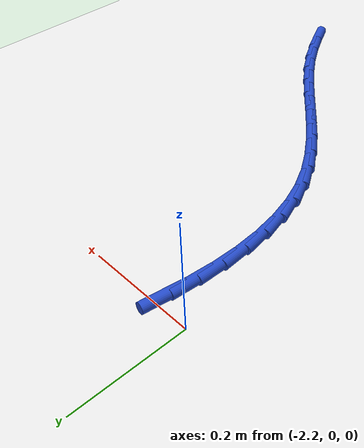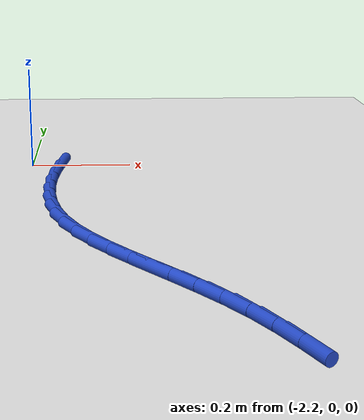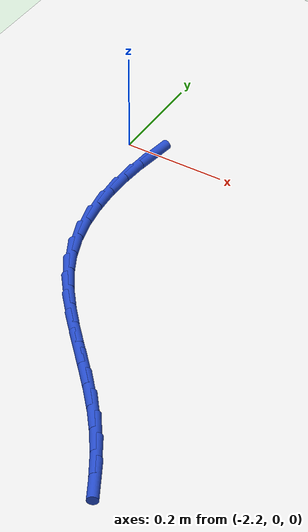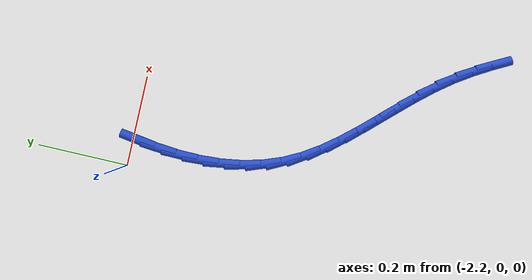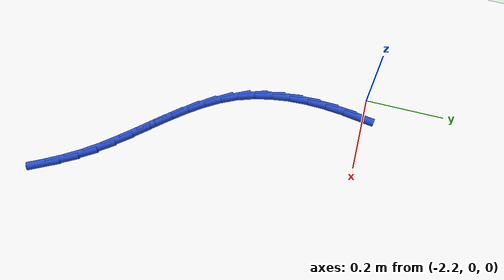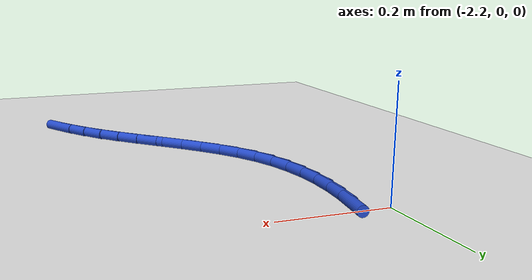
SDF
<sdf version="1.6">
 <world name="default">
  <model name="ground_plane">
   <static>1</static>
   <link name="link">
    <collision name="collision">
     <geometry><plane><normal>0 0 1</normal><size>100 100</size></plane></geometry>
     <surface><friction><ode><mu>100</mu><mu2>50</mu2></ode></friction></surface>
    </collision>
    <visual name="visual">
     <cast_shadows>0</cast_shadows>
     <geometry><plane><normal>0 0 1</normal><size>100 100</size></plane></geometry>
     <material>
      <script><uri>file://media/materials/scripts/gazebo.material</uri><name>Gazebo/WhiteGlow</name></script>
     </material>
    </visual>
   </link>
  </model>
  <model name="line">
   <link name="link_75">
    <pose>-2.139070190880333 -0.01192500603182736 0.01 0 1.57 1.4199803794109818</pose>
    <collision name="collision">
     <geometry><cylinder><radius>0.01</radius><length>0.08</length></cylinder></geometry>
    </collision>
    <visual name="visual">
     <material>
      <script><name>Gazebo/Blue</name><uri>file://media/materials/scripts/gazebo.material</uri></script>
     </material>
     <geometry><cylinder><radius>0.01</radius><length>0.08</length></cylinder></geometry>
    </visual>
   </link>
   <link name="link_76">
    <pose>-2.14638756006025 -0.06007512573344158 0.01 0 1.57 1.4832734362642437</pose>
    <collision name="collision">
     <geometry><cylinder><radius>0.01</radius><length>0.08</length></cylinder></geometry>
    </collision>
    <visual name="visual">
     <material>
      <script><name>Gazebo/Blue</name><uri>file://media/materials/scripts/gazebo.material</uri></script>
     </material>
     <geometry><cylinder><radius>0.01</radius><length>0.08</length></cylinder></geometry>
    </visual>
   </link>
   <link name="link_77">
    <pose>-2.1505939717470017 -0.10801304736236544 0.01 0 1.57 1.5538205244848378</pose>
    <collision name="collision">
     <geometry><cylinder><radius>0.01</radius><length>0.08</length></cylinder></geometry>
    </collision>
    <visual name="visual">
     <material>
      <script><name>Gazebo/Blue</name><uri>file://media/materials/scripts/gazebo.material</uri></script>
     </material>
     <geometry><cylinder><radius>0.01</radius><length>0.08</length></cylinder></geometry>
    </visual>
   </link>
   <link name="link_78">
    <pose>-2.1513984143609197 -0.1553961002253221 0.01 0 1.57 -1.5087376619041846</pose>
    <collision name="collision">
     <geometry><cylinder><radius>0.01</radius><length>0.08</length></cylinder></geometry>
    </collision>
    <visual name="visual">
     <material>
      <script><name>Gazebo/Blue</name><uri>file://media/materials/scripts/gazebo.material</uri></script>
     </material>
     <geometry><cylinder><radius>0.01</radius><length>0.08</length></cylinder></geometry>
    </visual>
   </link>
   <link name="link_79">
    <pose>-2.1485098763223336 -0.20188161362903673 0.01 0 1.57 -1.4200537050922653</pose>
    <collision name="collision">
     <geometry><cylinder><radius>0.01</radius><length>0.08</length></cylinder></geometry>
    </collision>
    <visual name="visual">
     <material>
      <script><name>Gazebo/Blue</name><uri>file://media/materials/scripts/gazebo.material</uri></script>
     </material>
     <geometry><cylinder><radius>0.01</radius><length>0.08</length></cylinder></geometry>
    </visual>
   </link>
   <link name="link_80">
    <pose>-2.1416373460515747 -0.2471269168802317 0.01 0 1.57 -1.3208245523780549</pose>
    <collision name="collision">
     <geometry><cylinder><radius>0.01</radius><length>0.08</length></cylinder></geometry>
    </collision>
    <visual name="visual">
     <material>
      <script><name>Gazebo/Blue</name><uri>file://media/materials/scripts/gazebo.material</uri></script>
     </material>
     <geometry><cylinder><radius>0.01</radius><length>0.08</length></cylinder></geometry>
    </visual>
   </link>
   <link name="link_81">
    <pose>-2.130489811968975 -0.2907893392856323 0.01 0 1.57 -1.2107192618182852</pose>
    <collision name="collision">
     <geometry><cylinder><radius>0.01</radius><length>0.08</length></cylinder></geometry>
    </collision>
    <visual name="visual">
     <material>
      <script><name>Gazebo/Blue</name><uri>file://media/materials/scripts/gazebo.material</uri></script>
     </material>
     <geometry><cylinder><radius>0.01</radius><length>0.08</length></cylinder></geometry>
    </visual>
   </link>
   <link name="link_82">
    <pose>-2.114776262494865 -0.3325262101519615 0.01 0 1.57 -1.092602460139994</pose>
    <collision name="collision">
     <geometry><cylinder><radius>0.01</radius><length>0.08</length></cylinder></geometry>
    </collision>
    <visual name="visual">
     <material>
      <script><name>Gazebo/Blue</name><uri>file://media/materials/scripts/gazebo.material</uri></script>
     </material>
     <geometry><cylinder><radius>0.01</radius><length>0.08</length></cylinder></geometry>
    </visual>
   </link>
   <link name="link_83">
    <pose>-2.0942898842576088 -0.3720509891239041 0.01 0 1.57 -0.9882693294790715</pose>
    <collision name="collision">
     <geometry><cylinder><radius>0.01</radius><length>0.08</length></cylinder></geometry>
    </collision>
    <visual name="visual">
     <material>
      <script><name>Gazebo/Blue</name><uri>file://media/materials/scripts/gazebo.material</uri></script>
     </material>
     <geometry><cylinder><radius>0.01</radius><length>0.08</length></cylinder></geometry>
    </visual>
   </link>
   <link name="link_84">
    <pose>-2.0695699209130716 -0.40957449124205764 0.01 0 1.57 -0.9092339965619007</pose>
    <collision name="collision">
     <geometry><cylinder><radius>0.01</radius><length>0.08</length></cylinder></geometry>
    </collision>
    <visual name="visual">
     <material>
      <script><name>Gazebo/Blue</name><uri>file://media/materials/scripts/gazebo.material</uri></script>
     </material>
     <geometry><cylinder><radius>0.01</radius><length>0.08</length></cylinder></geometry>
    </visual>
   </link>
   <link name="link_85">
    <pose>-2.0415454331595813 -0.4455674012383985 0.01 0 1.57 -0.8547583693760171</pose>
    <collision name="collision">
     <geometry><cylinder><radius>0.01</radius><length>0.08</length></cylinder></geometry>
    </collision>
    <visual name="visual">
     <material>
      <script><name>Gazebo/Blue</name><uri>file://media/materials/scripts/gazebo.material</uri></script>
     </material>
     <geometry><cylinder><radius>0.01</radius><length>0.08</length></cylinder></geometry>
    </visual>
   </link>
   <link name="link_86">
    <pose>-2.0111488766470327 -0.4805026670733416 0.01 0 1.57 -0.8233693868195241</pose>
    <collision name="collision">
     <geometry><cylinder><radius>0.01</radius><length>0.08</length></cylinder></geometry>
    </collision>
    <visual name="visual">
     <material>
      <script><name>Gazebo/Blue</name><uri>file://media/materials/scripts/gazebo.material</uri></script>
     </material>
     <geometry><cylinder><radius>0.01</radius><length>0.08</length></cylinder></geometry>
    </visual>
   </link>
   <link name="link_87">
    <pose>-1.9793127070253205 -0.5148532367073001 0.01 0 1.57 -0.8138589825990505</pose>
    <collision name="collision">
     <geometry><cylinder><radius>0.01</radius><length>0.08</length></cylinder></geometry>
    </collision>
    <visual name="visual">
     <material>
      <script><name>Gazebo/Blue</name><uri>file://media/materials/scripts/gazebo.material</uri></script>
     </material>
     <geometry><cylinder><radius>0.01</radius><length>0.08</length></cylinder></geometry>
    </visual>
   </link>
   <link name="link_88">
    <pose>-1.9469693799443388 -0.5490920581006871 0.01 0 1.57 -0.8256961018040806</pose>
    <collision name="collision">
     <geometry><cylinder><radius>0.01</radius><length>0.08</length></cylinder></geometry>
    </collision>
    <visual name="visual">
     <material>
      <script><name>Gazebo/Blue</name><uri>file://media/materials/scripts/gazebo.material</uri></script>
     </material>
     <geometry><cylinder><radius>0.01</radius><length>0.08</length></cylinder></geometry>
    </visual>
   </link>
   <link name="link_89">
    <pose>-1.9150513510539817 -0.5836920792139177 0.01 0 1.57 -0.8591174214775699</pose>
    <collision name="collision">
     <geometry><cylinder><radius>0.01</radius><length>0.08</length></cylinder></geometry>
    </collision>
    <visual name="visual">
     <material>
      <script><name>Gazebo/Blue</name><uri>file://media/materials/scripts/gazebo.material</uri></script>
     </material>
     <geometry><cylinder><radius>0.01</radius><length>0.08</length></cylinder></geometry>
    </visual>
   </link>
   <link name="link_90">
    <pose>-1.8844910760041436 -0.6191262480074049 0.01 0 1.57 -0.9149704807824931</pose>
    <collision name="collision">
     <geometry><cylinder><radius>0.01</radius><length>0.08</length></cylinder></geometry>
    </collision>
    <visual name="visual">
     <material>
      <script><name>Gazebo/Blue</name><uri>file://media/materials/scripts/gazebo.material</uri></script>
     </material>
     <geometry><cylinder><radius>0.01</radius><length>0.08</length></cylinder></geometry>
    </visual>
   </link>
   <link name="link_91">
    <pose>-1.8562209662392808 -0.6558674896075732 0.01 0 1.57 -0.9859981818546693</pose>
    <collision name="collision">
     <geometry><cylinder><radius>0.01</radius><length>0.08</length></cylinder></geometry>
    </collision>
    <visual name="visual">
     <material>
      <script><name>Gazebo/Blue</name><uri>file://media/materials/scripts/gazebo.material</uri></script>
     </material>
     <geometry><cylinder><radius>0.01</radius><length>0.08</length></cylinder></geometry>
    </visual>
   </link>
   <link name="link_92">
    <pose>-1.8308341044540744 -0.6942134514135393 0.01 0 1.57 -1.0438904494432948</pose>
    <collision name="collision">
     <geometry><cylinder><radius>0.01</radius><length>0.08</length></cylinder></geometry>
    </collision>
    <visual name="visual">
     <material>
      <script><name>Gazebo/Blue</name><uri>file://media/materials/scripts/gazebo.material</uri></script>
     </material>
     <geometry><cylinder><radius>0.01</radius><length>0.08</length></cylinder></geometry>
    </visual>
   </link>
   <link name="link_93">
    <pose>-1.8077665895946393 -0.733864149524038 0.01 0 1.57 -1.081926793127314</pose>
    <collision name="collision">
     <geometry><cylinder><radius>0.01</radius><length>0.08</length></cylinder></geometry>
    </collision>
    <visual name="visual">
     <material>
      <script><name>Gazebo/Blue</name><uri>file://media/materials/scripts/gazebo.material</uri></script>
     </material>
     <geometry><cylinder><radius>0.01</radius><length>0.08</length></cylinder></geometry>
    </visual>
   </link>
  </model>
 </world>
</sdf>
